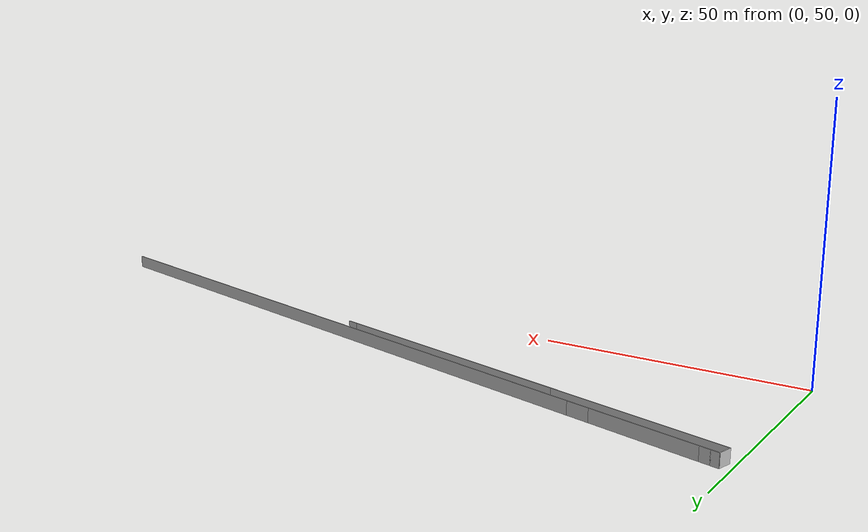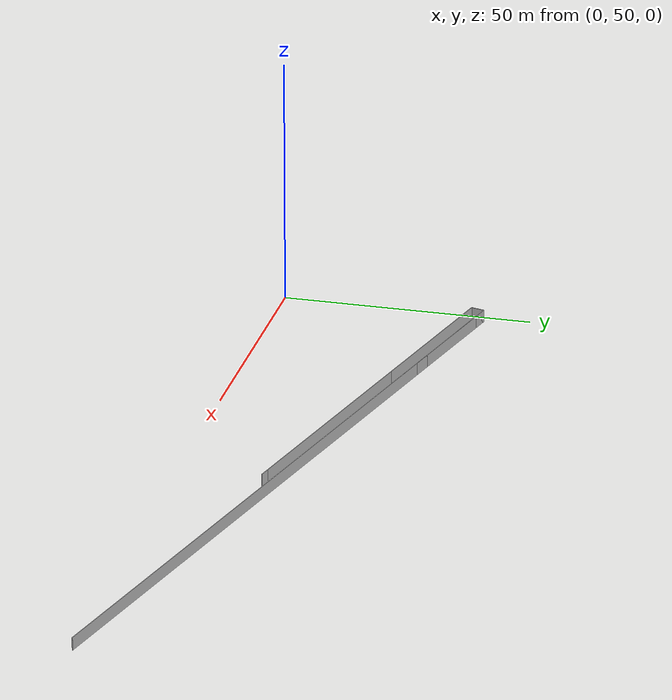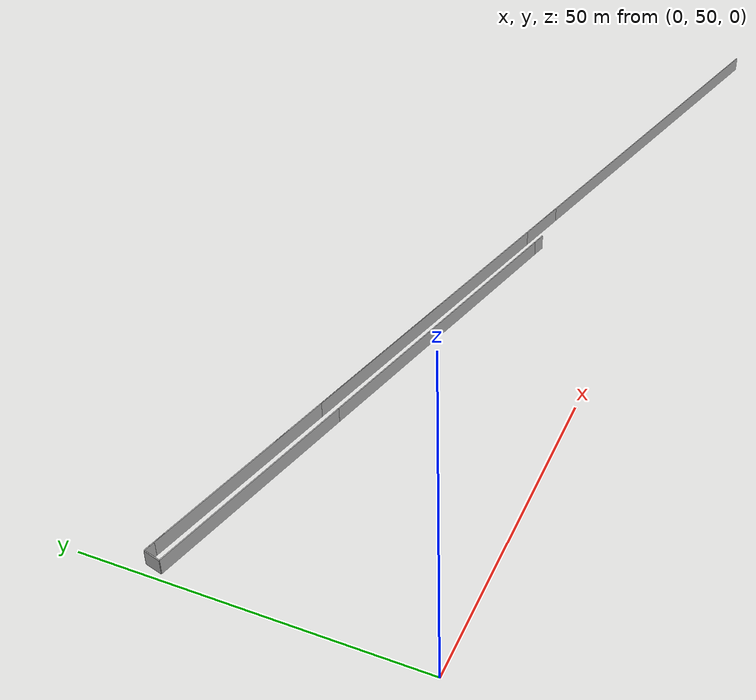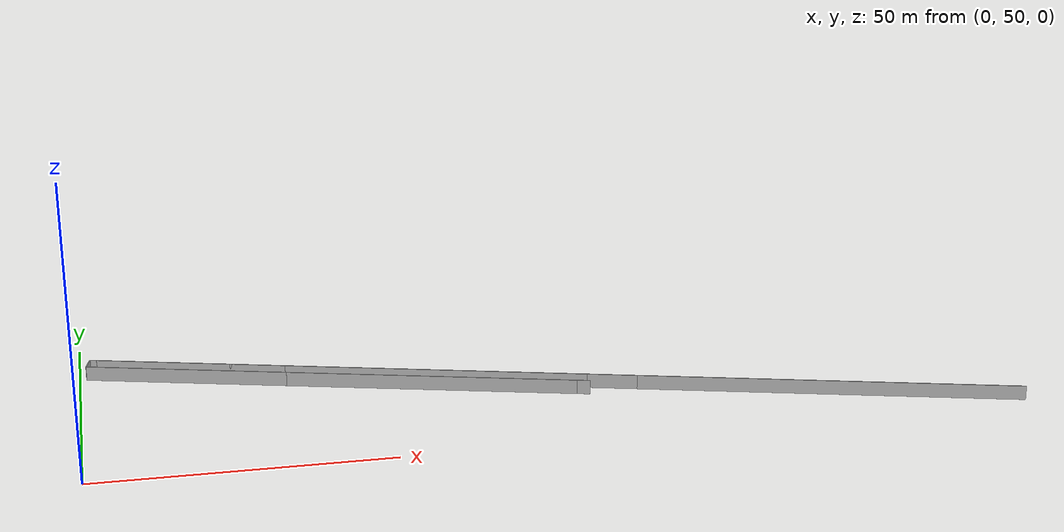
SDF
<?xml version="1.0" ?>
<sdf version="1.6">
  <model name="sps_0203">
    <pose frame="">0 0 0 0 -0 0</pose>
    <static>1</static>
    <self_collide>0</self_collide>
    <allow_auto_disable>0</allow_auto_disable>
    <link name="Wall1">
      <kinematic>0</kinematic>
      <gravity>1</gravity>
      <self_collide>0</self_collide>
      <collision name="collision">
        <geometry>
          <box>
            <size>33.7885 0.15 2.5</size>
          </box>
        </geometry>
        <pose frame="">0 0 0 0 -0 0</pose>
      </collision>
      <visual name="visual">
        <geometry>
          <box>
            <size>33.7885 0.15 2.5</size>
          </box>
        </geometry>
        <pose frame="">0 0 0 0 -0 0</pose>
        <cast_shadows>1</cast_shadows>
        <transparency>0.0</transparency>
      </visual>
      <pose frame="">18.094 86.8253 1.25 0 0 -0.248456</pose>
    </link>
    <link name="Wall2">
      <kinematic>0</kinematic>
      <gravity>1</gravity>
      <self_collide>0</self_collide>
      <collision name="collision">
        <geometry>
          <box>
            <size>51.584 0.15 2.5</size>
          </box>
        </geometry>
        <pose frame="">0 0 0 0 -0 0</pose>
      </collision>
      <visual name="visual">
        <geometry>
          <box>
            <size>51.584 0.15 2.5</size>
          </box>
        </geometry>
        <pose frame="">0 0 0 0 -0 0</pose>
        <cast_shadows>1</cast_shadows>
        <transparency>0.0</transparency>
      </visual>
      <pose frame="">59.4694 76.3284 1.25 0 0 -0.248456</pose>
    </link>
    <link name="Wall3">
      <kinematic>0</kinematic>
      <gravity>1</gravity>
      <self_collide>0</self_collide>
      <collision name="collision">
        <geometry>
          <box>
            <size>8.51095 0.15 2.5</size>
          </box>
        </geometry>
        <pose frame="">0 0 0 0 -0 0</pose>
      </collision>
      <visual name="visual">
        <geometry>
          <box>
            <size>8.51095 0.15 2.5</size>
          </box>
        </geometry>
        <pose frame="">0 0 0 0 -0 0</pose>
        <cast_shadows>1</cast_shadows>
        <transparency>0.0</transparency>
      </visual>
      <pose frame="">88.5942 68.9395 1.25 0 0 -0.248456</pose>
    </link>
    <link name="Wall408">
      <kinematic>0</kinematic>
      <gravity>1</gravity>
      <self_collide>0</self_collide>
      <collision name="collision">
        <geometry>
          <box>
            <size>2.20824 0.15 2.5</size>
          </box>
        </geometry>
        <pose frame="">0 0 0 0 -0 0</pose>
      </collision>
      <visual name="visual">
        <geometry>
          <box>
            <size>2.20824 0.15 2.5</size>
          </box>
        </geometry>
        <pose frame="">0 0 0 0 -0 0</pose>
        <cast_shadows>1</cast_shadows>
        <transparency>0.0</transparency>
      </visual>
      <pose frame="">83.3988 67.6234 1.25 0 -0 2.89487</pose>
    </link>
    <link name="Wall409">
      <kinematic>0</kinematic>
      <gravity>1</gravity>
      <self_collide>0</self_collide>
      <collision name="collision">
        <geometry>
          <box>
            <size>49.3531 0.15 2.5</size>
          </box>
        </geometry>
        <pose frame="">0 0 0 0 -0 0</pose>
      </collision>
      <visual name="visual">
        <geometry>
          <box>
            <size>49.3531 0.15 2.5</size>
          </box>
        </geometry>
        <pose frame="">0 0 0 0 -0 0</pose>
        <cast_shadows>1</cast_shadows>
        <transparency>0.0</transparency>
      </visual>
      <pose frame="">58.3988 73.9198 1.25 0 -0 2.89487</pose>
    </link>
    <link name="Wall410">
      <kinematic>0</kinematic>
      <gravity>1</gravity>
      <self_collide>0</self_collide>
      <collision name="collision">
        <geometry>
          <box>
            <size>34.4564 0.15 2.5</size>
          </box>
        </geometry>
        <pose frame="">0 0 0 0 -0 0</pose>
      </collision>
      <visual name="visual">
        <geometry>
          <box>
            <size>34.4564 0.15 2.5</size>
          </box>
        </geometry>
        <pose frame="">0 0 0 0 -0 0</pose>
        <cast_shadows>1</cast_shadows>
        <transparency>0.0</transparency>
      </visual>
      <pose frame="">17.763 84.1541 1.25 0 -0 2.89487</pose>
    </link>
    <link name="Wall1916">
      <kinematic>0</kinematic>
      <gravity>1</gravity>
      <self_collide>0</self_collide>
      <collision name="collision">
        <geometry>
          <box>
            <size>2.70033 0.15 2.5</size>
          </box>
        </geometry>
        <pose frame="">0 0 0 0 -0 0</pose>
      </collision>
      <visual name="visual">
        <geometry>
          <box>
            <size>2.70033 0.15 2.5</size>
          </box>
        </geometry>
        <pose frame="">0 0 0 0 -0 0</pose>
        <cast_shadows>1</cast_shadows>
        <transparency>0.0</transparency>
      </visual>
      <pose frame="">1.38756 89.6707 1.25 0 -0 1.32319</pose>
    </link>
    <link name="Wall1917">
      <kinematic>0</kinematic>
      <gravity>1</gravity>
      <self_collide>0</self_collide>
      <collision name="collision">
        <geometry>
          <box>
            <size>3.50003 0.15 2.5</size>
          </box>
        </geometry>
        <pose frame="">0 0 0 0 -0 0</pose>
      </collision>
      <visual name="visual">
        <geometry>
          <box>
            <size>3.50003 0.15 2.5</size>
          </box>
        </geometry>
        <pose frame="">0 0 0 0 -0 0</pose>
        <cast_shadows>1</cast_shadows>
        <transparency>0.0</transparency>
      </visual>
      <pose frame="">3.41476 90.5494 1.25 0 0 -0.24843</pose>
    </link>
    <link name="Wall1918">
      <kinematic>0</kinematic>
      <gravity>1</gravity>
      <self_collide>0</self_collide>
      <collision name="collision">
        <geometry>
          <box>
            <size>20.7865 0.15 2.5</size>
          </box>
        </geometry>
        <pose frame="">0 0 0 0 -0 0</pose>
      </collision>
      <visual name="visual">
        <geometry>
          <box>
            <size>20.7865 0.15 2.5</size>
          </box>
        </geometry>
        <pose frame="">0 0 0 0 -0 0</pose>
        <cast_shadows>1</cast_shadows>
        <transparency>0.0</transparency>
      </visual>
      <pose frame="">15.1851 87.5633 1.25 0 0 -0.248457</pose>
    </link>
    <link name="Wall1919">
      <kinematic>0</kinematic>
      <gravity>1</gravity>
      <self_collide>0</self_collide>
      <collision name="collision">
        <geometry>
          <box>
            <size>4.43888 0.15 2.5</size>
          </box>
        </geometry>
        <pose frame="">0 0 0 0 -0 0</pose>
      </collision>
      <visual name="visual">
        <geometry>
          <box>
            <size>4.43888 0.15 2.5</size>
          </box>
        </geometry>
        <pose frame="">0 0 0 0 -0 0</pose>
        <cast_shadows>1</cast_shadows>
        <transparency>0.0</transparency>
      </visual>
      <pose frame="">27.4105 84.4618 1.25 0 0 -0.248427</pose>
    </link>
    <link name="Wall1920">
      <kinematic>0</kinematic>
      <gravity>1</gravity>
      <self_collide>0</self_collide>
      <collision name="collision">
        <geometry>
          <box>
            <size>130.401 0.15 2.5</size>
          </box>
        </geometry>
        <pose frame="">0 0 0 0 -0 0</pose>
      </collision>
      <visual name="visual">
        <geometry>
          <box>
            <size>130.401 0.15 2.5</size>
          </box>
        </geometry>
        <pose frame="">0 0 0 0 -0 0</pose>
        <cast_shadows>1</cast_shadows>
        <transparency>0.0</transparency>
      </visual>
      <pose frame="">92.7602 67.8829 1.25 0 0 -0.248455</pose>
    </link>
  </model>
</sdf>
